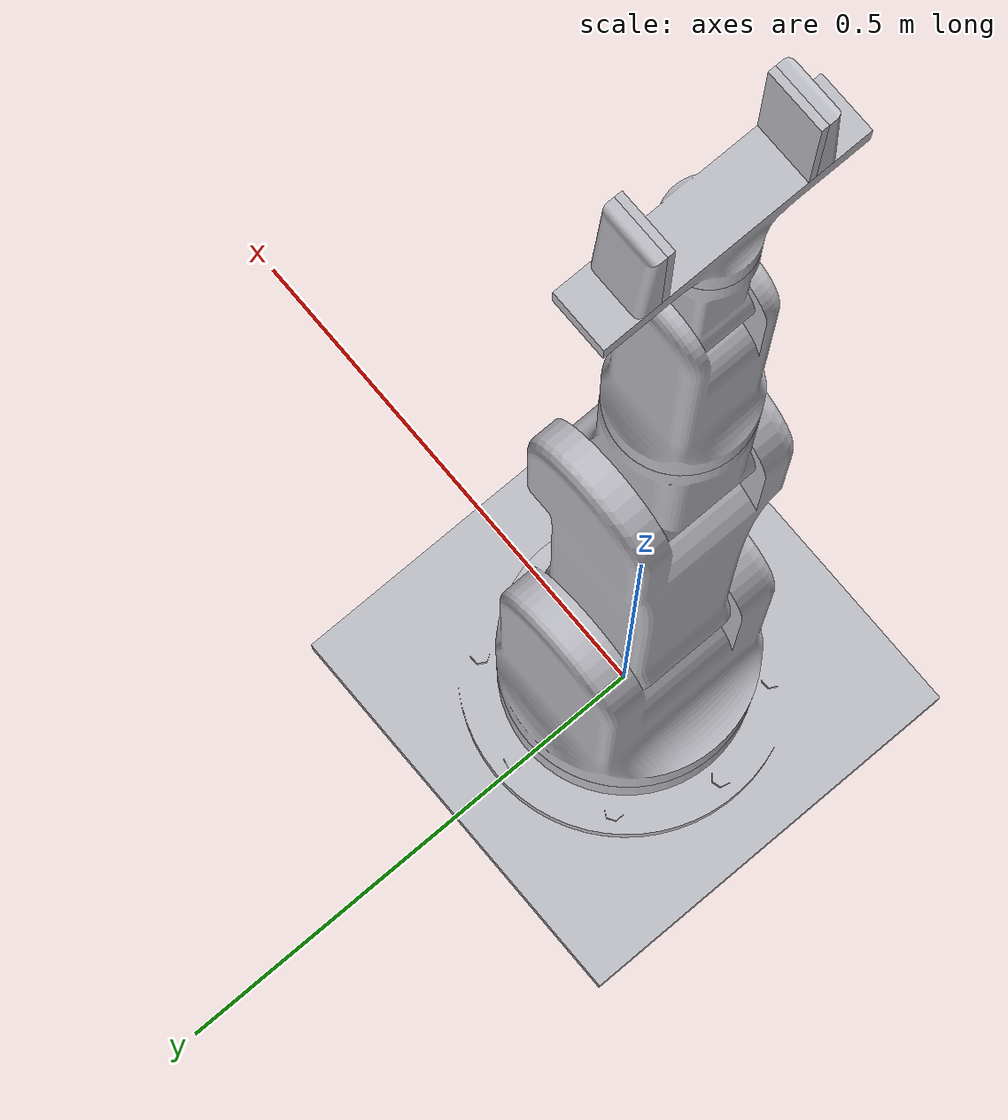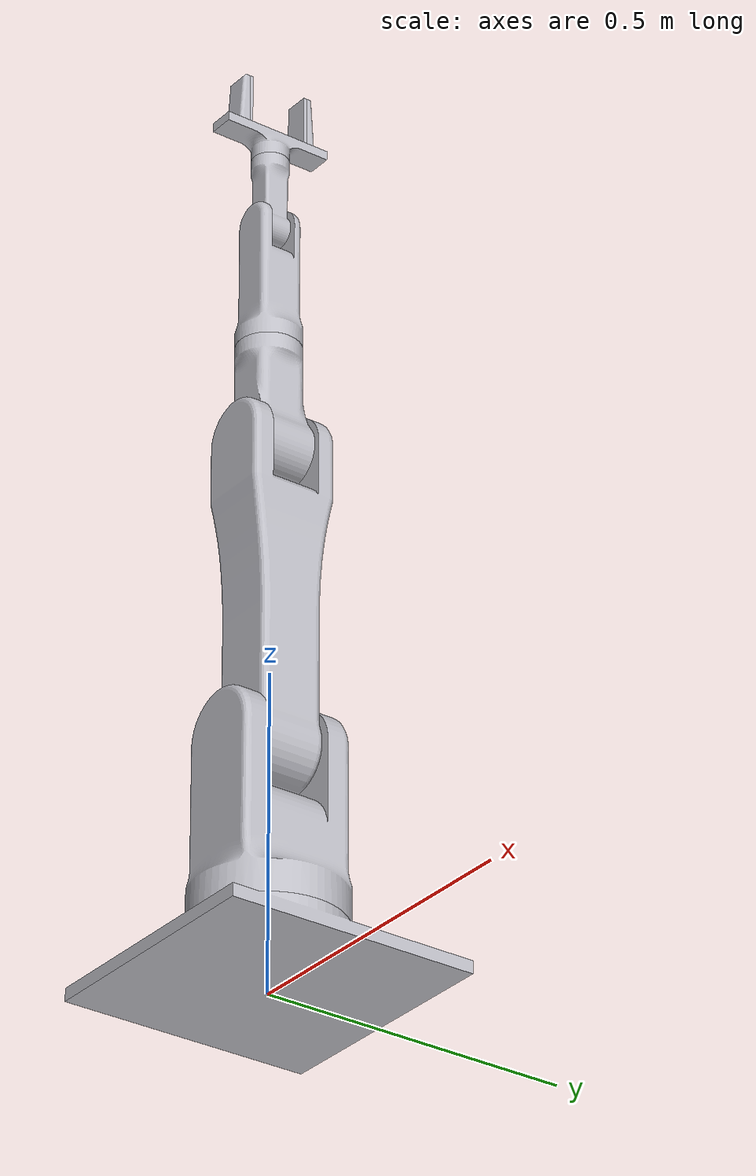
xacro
<?xml version="1.0" ?>
<robot name="robot_arm" xmlns:xacro="http://www.ros.org/wiki/xacro">

<xacro:include filename="$(find robot_arm_description)/urdf/materials.xacro" />
<xacro:include filename="$(find robot_arm_description)/urdf/robot_arm.trans" />
<xacro:include filename="$(find robot_arm_description)/urdf/robot_arm.gazebo" />

<link name="world"/>

<joint name="base_joint" type="fixed">
	<parent link="world"/>
	<child link="base_link"/>
	<origin rpy="0 0 0" xyz="0.0 0.0 0.0"/>
</joint>

<link name="base_link"></link>

<joint name="base_joint2" type="fixed">
	<parent link="base_link"/>
	<child link="base"/>
	<origin rpy="0 0 0" xyz="0.0 0.0 0.01"/>
</joint>

<link name="base">
  <inertial>
    <origin xyz="0.0 -4.3415807077914064e-17 0.03132405886399544" rpy="0 0 0"/>
    <mass value="18.09947747652384"/>
    <inertia ixx="0.167384" iyy="0.167384" izz="0.310998" ixy="0.0" iyz="0.0" ixz="0.0"/>
  </inertial>
  <visual>
    <origin xyz="0 0 0" rpy="0 0 0"/>
    <geometry>
      <mesh filename="package://robot_arm_description/meshes/base_link.stl" scale="0.001 0.001 0.001"/>
    </geometry>
    <material name="silver"/>
  </visual>
  <collision>
    <origin xyz="0 0 0" rpy="0 0 0"/>
    <geometry>
      <mesh filename="package://robot_arm_description/meshes/base_link.stl" scale="0.001 0.001 0.001"/>
    </geometry>
  </collision>
</link>

<link name="waist_1">
  <inertial>
    <origin xyz="-2.3750403473000028e-07 -8.066667906738984e-07 0.12364058852377574" rpy="0 0 0"/>
    <mass value="20.183529231928016"/>
    <inertia ixx="0.235705" iyy="0.209956" izz="0.110543" ixy="-0.0" iyz="-1e-06" ixz="-0.0"/>
  </inertial>
  <visual>
    <origin xyz="-0.0 -0.0 -0.09" rpy="0 0 0"/>
    <geometry>
      <mesh filename="package://robot_arm_description/meshes/waist_1.stl" scale="0.001 0.001 0.001"/>
    </geometry>
    <material name="silver"/>
  </visual>
  <collision>
    <origin xyz="-0.0 -0.0 -0.09" rpy="0 0 0"/>
    <geometry>
      <mesh filename="package://robot_arm_description/meshes/waist_1.stl" scale="0.001 0.001 0.001"/>
    </geometry>
  </collision>
</link>

<link name="upperarm_1">
  <inertial>
    <origin xyz="2.3659047487929498e-11 -0.04999996703866122 0.2327718880777211" rpy="0 0 0"/>
    <mass value="17.58857290587048"/>
    <inertia ixx="0.489324" iyy="0.485246" izz="0.040061" ixy="-0.0" iyz="-0.0" ixz="-0.0"/>
  </inertial>
  <visual>
    <origin xyz="-0.0 -0.05 -0.37" rpy="0 0 0"/>
    <geometry>
      <mesh filename="package://robot_arm_description/meshes/upperarm_1.stl" scale="0.001 0.001 0.001"/>
    </geometry>
    <material name="silver"/>
  </visual>
  <collision>
    <origin xyz="-0.0 -0.05 -0.37" rpy="0 0 0"/>
    <geometry>
      <mesh filename="package://robot_arm_description/meshes/upperarm_1.stl" scale="0.001 0.001 0.001"/>
    </geometry>
  </collision>
</link>

<link name="forearm1_1">
  <inertial>
    <origin xyz="-0.006296683962501097 0.04000001957050841 0.06477978077948165" rpy="0 0 0"/>
    <mass value="4.070671407078093"/>
    <inertia ixx="0.019208" iyy="0.019543" izz="0.004706" ixy="0.0" iyz="-0.0" ixz="0.001037"/>
  </inertial>
  <visual>
    <origin xyz="-0.0 0.04 -0.86" rpy="0 0 0"/>
    <geometry>
      <mesh filename="package://robot_arm_description/meshes/forearm1_1.stl" scale="0.001 0.001 0.001"/>
    </geometry>
    <material name="silver"/>
  </visual>
  <collision>
    <origin xyz="-0.0 0.04 -0.86" rpy="0 0 0"/>
    <geometry>
      <mesh filename="package://robot_arm_description/meshes/forearm1_1.stl" scale="0.001 0.001 0.001"/>
    </geometry>
  </collision>
</link>

<link name="forearm2_1">
  <inertial>
    <origin xyz="-2.7829952249300294e-07 1.033368932702031e-06 0.09268439753937763" rpy="0 0 0"/>
    <mass value="2.849952140554099"/>
    <inertia ixx="0.013062" iyy="0.012885" izz="0.002689" ixy="0.0" iyz="0.0" ixz="-0.0"/>
  </inertial>
  <visual>
    <origin xyz="0.01 -0.0 -1.035" rpy="0 0 0"/>
    <geometry>
      <mesh filename="package://robot_arm_description/meshes/forearm2_1.stl" scale="0.001 0.001 0.001"/>
    </geometry>
    <material name="silver"/>
  </visual>
  <collision>
    <origin xyz="0.01 -0.0 -1.035" rpy="0 0 0"/>
    <geometry>
      <mesh filename="package://robot_arm_description/meshes/forearm2_1.stl" scale="0.001 0.001 0.001"/>
    </geometry>
  </collision>
</link>

<link name="wrist1_1">
  <inertial>
    <origin xyz="2.0227437942908766e-06 0.020000329180512106 0.05299335806886707" rpy="0 0 0"/>
    <mass value="0.6993742533213136"/>
    <inertia ixx="0.001407" iyy="0.001413" izz="0.000215" ixy="0.0" iyz="-0.0" ixz="-0.0"/>
  </inertial>
  <visual>
    <origin xyz="0.01 0.02 -1.245" rpy="0 0 0"/>
    <geometry>
      <mesh filename="package://robot_arm_description/meshes/wrist1_1.stl" scale="0.001 0.001 0.001"/>
    </geometry>
    <material name="silver"/>
  </visual>
  <collision>
    <origin xyz="0.01 0.02 -1.245" rpy="0 0 0"/>
    <geometry>
      <mesh filename="package://robot_arm_description/meshes/wrist1_1.stl" scale="0.001 0.001 0.001"/>
    </geometry>
  </collision>
</link>

<link name="wrist2_1">
  <inertial>
    <origin xyz="1.1275702593849246e-16 3.657115606811286e-17 0.0281686051105714" rpy="0 0 0"/>
    <mass value="0.5036009164326142"/>
    <inertia ixx="0.000922" iyy="0.000161" izz="0.000918" ixy="0.0" iyz="-0.0" ixz="0.0"/>
  </inertial>
  <visual>
    <origin xyz="0.01 -0.0 -1.365" rpy="0 0 0"/>
    <geometry>
      <mesh filename="package://robot_arm_description/meshes/wrist2_1.stl" scale="0.001 0.001 0.001"/>
    </geometry>
    <material name="silver"/>
  </visual>
  <collision>
    <origin xyz="0.01 -0.0 -1.365" rpy="0 0 0"/>
    <geometry>
      <mesh filename="package://robot_arm_description/meshes/wrist2_1.stl" scale="0.001 0.001 0.001"/>
    </geometry>
  </collision>
</link>

<link name="grip_pad2_1">
  <inertial>
    <origin xyz="-6.938893903907228e-18 -0.0025000724777404274 0.0" rpy="0 0 0"/>
    <mass value="0.014880000388026237"/>
    <inertia ixx="8e-06" iyy="1e-05" izz="2e-06" ixy="-0.0" iyz="-0.0" ixz="-0.0"/>
  </inertial>
  <visual>
    <origin xyz="0.01 -0.005203 -1.45" rpy="0 0 0"/>
    <geometry>
      <mesh filename="package://robot_arm_description/meshes/grip_pad2_1.stl" scale="0.001 0.001 0.001"/>
    </geometry>
    <material name="silver"/>
  </visual>
  <collision>
    <origin xyz="0.01 -0.005203 -1.45" rpy="0 0 0"/>
    <geometry>
      <mesh filename="package://robot_arm_description/meshes/grip_pad2_1.stl" scale="0.001 0.001 0.001"/>
    </geometry>
  </collision>
</link>

<link name="grip_pad1_1">
  <inertial>
    <origin xyz="-1.0408340855860843e-17 0.0025000724777404274 0.0" rpy="0 0 0"/>
    <mass value="0.014880000388026237"/>
    <inertia ixx="8e-06" iyy="1e-05" izz="2e-06" ixy="0.0" iyz="0.0" ixz="0.0"/>
  </inertial>
  <visual>
    <origin xyz="0.01 0.005203 -1.45" rpy="0 0 0"/>
    <geometry>
      <mesh filename="package://robot_arm_description/meshes/grip_pad1_1.stl" scale="0.001 0.001 0.001"/>
    </geometry>
    <material name="silver"/>
  </visual>
  <collision>
    <origin xyz="0.01 0.005203 -1.45" rpy="0 0 0"/>
    <geometry>
      <mesh filename="package://robot_arm_description/meshes/grip_pad1_1.stl" scale="0.001 0.001 0.001"/>
    </geometry>
  </collision>
</link>

<link name="finger2_1">
  <inertial>
    <origin xyz="2.235174077075408e-10 0.011581779808013701 0.036854048228467606" rpy="0 0 0"/>
    <mass value="0.1078090820987537"/>
    <inertia ixx="5.8e-05" iyy="7e-05" izz="1.5e-05" ixy="-0.0" iyz="2e-06" ixz="0.0"/>
  </inertial>
  <visual>
    <origin xyz="0.01 -0.0 -1.41" rpy="0 0 0"/>
    <geometry>
      <mesh filename="package://robot_arm_description/meshes/finger2_1.stl" scale="0.001 0.001 0.001"/>
    </geometry>
    <material name="silver"/>
  </visual>
  <collision>
    <origin xyz="0.01 -0.0 -1.41" rpy="0 0 0"/>
    <geometry>
      <mesh filename="package://robot_arm_description/meshes/finger2_1.stl" scale="0.001 0.001 0.001"/>
    </geometry>
  </collision>
</link>

<link name="finger1_1">
  <inertial>
    <origin xyz="-5.582143254578842e-11 -0.011581779827821896 0.0368540482724069" rpy="0 0 0"/>
    <mass value="0.1078090836045169"/>
    <inertia ixx="5.8e-05" iyy="7e-05" izz="1.5e-05" ixy="-0.0" iyz="-2e-06" ixz="0.0"/>
  </inertial>
  <visual>
    <origin xyz="0.01 -0.0 -1.41" rpy="0 0 0"/>
    <geometry>
      <mesh filename="package://robot_arm_description/meshes/finger1_1.stl" scale="0.001 0.001 0.001"/>
    </geometry>
    <material name="silver"/>
  </visual>
  <collision>
    <origin xyz="0.01 -0.0 -1.41" rpy="0 0 0"/>
    <geometry>
      <mesh filename="package://robot_arm_description/meshes/finger1_1.stl" scale="0.001 0.001 0.001"/>
    </geometry>
  </collision>
</link>

<joint name="Revolute1" type="revolute">
  <origin xyz="0.0 0.0 0.09" rpy="0 0 0"/>
  <parent link="base"/>
  <child link="waist_1"/>
  <axis xyz="0.0 0.0 1.0"/>
  <limit upper="6.283185" lower="0.0" effort="100" velocity="100"/>
</joint>

<joint name="Revolute2" type="revolute">
  <origin xyz="0.0 0.05 0.28" rpy="0 0 0"/>
  <parent link="waist_1"/>
  <child link="upperarm_1"/>
  <axis xyz="0.0 -1.0 0.0"/>
  <limit upper="1.919862" lower="-1.919862" effort="100" velocity="100"/>
</joint>

<joint name="Revolute3" type="revolute">
  <origin xyz="0.0 -0.09 0.49" rpy="0 0 0"/>
  <parent link="upperarm_1"/>
  <child link="forearm1_1"/>
  <axis xyz="-0.0 1.0 0.0"/>
  <limit upper="2.094395" lower="-0.349066" effort="100" velocity="100"/>
</joint>

<joint name="Revolute4" type="revolute">
  <origin xyz="-0.01 0.04 0.175" rpy="0 0 0"/>
  <parent link="forearm1_1"/>
  <child link="forearm2_1"/>
  <axis xyz="0.0 0.0 1.0"/>
  <limit upper="6.283185" lower="0.0" effort="100" velocity="100"/>
</joint>

<joint name="Revolute5" type="revolute">
  <origin xyz="0.0 -0.02 0.21" rpy="0 0 0"/>
  <parent link="forearm2_1"/>
  <child link="wrist1_1"/>
  <axis xyz="0.0 1.0 0.0"/>
  <limit upper="2.181662" lower="-0.785398" effort="100" velocity="100"/>
</joint>

<joint name="Revolute6" type="revolute">
  <origin xyz="0.0 0.02 0.12" rpy="0 0 0"/>
  <parent link="wrist1_1"/>
  <child link="wrist2_1"/>
  <axis xyz="0.0 0.0 1.0"/>
  <limit upper="6.283185" lower="0.0" effort="100" velocity="100"/>
</joint>

<joint name="Rigid7" type="fixed">
  <origin xyz="0.0 0.005203 0.04" rpy="0 0 0"/>
  <parent link="finger2_1"/>
  <child link="grip_pad2_1"/>
</joint>

<joint name="Rigid8" type="fixed">
  <origin xyz="0.0 -0.005203 0.04" rpy="0 0 0"/>
  <parent link="finger1_1"/>
  <child link="grip_pad1_1"/>
</joint>

<joint name="Slider9" type="prismatic">
  <origin xyz="0.0 0.0 0.045" rpy="0 0 0"/>
  <parent link="wrist2_1"/>
  <child link="finger2_1"/>
  <axis xyz="0.0 1.0 0.0"/>
  <limit upper="0.08" lower="0.013" effort="100" velocity="100"/>
</joint>

<joint name="Slider10" type="prismatic">
  <origin xyz="0.0 0.0 0.045" rpy="0 0 0"/>
  <parent link="wrist2_1"/>
  <child link="finger1_1"/>
  <axis xyz="0.0 1.0 0.0"/>
  <limit upper="-0.013" lower="-0.08" effort="100" velocity="100"/>
  <mimic joint="Slider9" multiplier="-1" offset="0" />
</joint>

</robot>

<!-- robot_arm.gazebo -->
<robot name="robot_arm" xmlns:xacro="http://www.ros.org/wiki/xacro" >

<xacro:property name="body_color" value="Gazebo/Grey" />

<gazebo>
  <plugin name="control" filename="libgazebo_ros_control.so">
    <robotNamespace>/</robotNamespace>
  </plugin>
</gazebo>

<gazebo reference="base_link">
  <material>${body_color}</material>
  <mu1>0.2</mu1>
  <mu2>0.2</mu2>
  <selfCollide>true</selfCollide>
  <gravity>true</gravity>
</gazebo>

<gazebo reference="waist_1">
  <material>${body_color}</material>
  <mu1>0.2</mu1>
  <mu2>0.2</mu2>
  <selfCollide>true</selfCollide>
</gazebo>

<gazebo reference="upperarm_1">
  <material>${body_color}</material>
  <mu1>0.2</mu1>
  <mu2>0.2</mu2>
  <selfCollide>true</selfCollide>
</gazebo>

<gazebo reference="forearm1_1">
  <material>${body_color}</material>
  <mu1>0.2</mu1>
  <mu2>0.2</mu2>
  <selfCollide>true</selfCollide>
</gazebo>

<gazebo reference="forearm2_1">
  <material>${body_color}</material>
  <mu1>0.2</mu1>
  <mu2>0.2</mu2>
  <selfCollide>true</selfCollide>
</gazebo>

<gazebo reference="wrist1_1">
  <material>${body_color}</material>
  <mu1>0.2</mu1>
  <mu2>0.2</mu2>
  <selfCollide>true</selfCollide>
</gazebo>

<gazebo reference="wrist2_1">
  <material>${body_color}</material>
  <mu1>0.2</mu1>
  <mu2>0.2</mu2>
  <selfCollide>true</selfCollide>
</gazebo>

<gazebo reference="grip_pad2_1">
  <material>${body_color}</material>
  <mu1>0.2</mu1>
  <mu2>0.2</mu2>
  <selfCollide>true</selfCollide>
</gazebo>

<gazebo reference="grip_pad1_1">
  <material>${body_color}</material>
  <mu1>0.2</mu1>
  <mu2>0.2</mu2>
  <selfCollide>true</selfCollide>
</gazebo>

<gazebo reference="finger2_1">
  <material>${body_color}</material>
  <mu1>0.2</mu1>
  <mu2>0.2</mu2>
  <selfCollide>true</selfCollide>
</gazebo>

<gazebo reference="finger1_1">
  <material>${body_color}</material>
  <mu1>0.2</mu1>
  <mu2>0.2</mu2>
  <selfCollide>true</selfCollide>
</gazebo>

<gazebo reference="Revolute1">
    <disableFixedJointLumping>true</disableFixedJointLumping>
    <sensor name="waist_1_ft_sensor" type="force_torque">
      <force_torque>
        <frame>child</frame>
        <measure_direction>child_to_parent</measure_direction>
      </force_torque>
    </sensor>
  </gazebo>
  <gazebo>
      <plugin name="ft_sensor" filename="libgazebo_ros_ft_sensor.so">
          <updateRate>100.0</updateRate>
          <topicName>Revolute1_ft</topicName>
          <jointName>Revolute1</jointName>
      </plugin>
  </gazebo>

  <gazebo reference="Revolute2">
    <disableFixedJointLumping>true</disableFixedJointLumping>
    <sensor name="upperarm_1_ft_sensor" type="force_torque">
      <force_torque>
        <frame>child</frame>
        <measure_direction>child_to_parent</measure_direction>
      </force_torque>
    </sensor>
  </gazebo>
  <gazebo>
      <plugin name="ft_sensor" filename="libgazebo_ros_ft_sensor.so">
          <updateRate>100.0</updateRate>
          <topicName>Revolute2_ft</topicName>
          <jointName>Revolute2</jointName>
      </plugin>
  </gazebo>

  <gazebo reference="Revolute3">
    <disableFixedJointLumping>true</disableFixedJointLumping>
    <sensor name="forearm1_1_ft_sensor" type="force_torque">
      <force_torque>
        <frame>child</frame>
        <measure_direction>child_to_parent</measure_direction>
      </force_torque>
    </sensor>
  </gazebo>
  <gazebo>
      <plugin name="ft_sensor" filename="libgazebo_ros_ft_sensor.so">
          <updateRate>100.0</updateRate>
          <topicName>Revolute3_ft</topicName>
          <jointName>Revolute3</jointName>
      </plugin>
  </gazebo>

    <gazebo reference="Revolute4">
    <disableFixedJointLumping>true</disableFixedJointLumping>
    <sensor name="forearm2_1_ft_sensor" type="force_torque">
      <force_torque>
        <frame>child</frame>
        <measure_direction>child_to_parent</measure_direction>
      </force_torque>
    </sensor>
  </gazebo>
  <gazebo>
      <plugin name="ft_sensor" filename="libgazebo_ros_ft_sensor.so">
          <updateRate>100.0</updateRate>
          <topicName>Revolute4_ft</topicName>
          <jointName>Revolute4</jointName>
      </plugin>
  </gazebo>

  <gazebo reference="Revolute5">
    <disableFixedJointLumping>true</disableFixedJointLumping>
    <sensor name="wrist1_1_ft_sensor" type="force_torque">
      <force_torque>
        <frame>child</frame>
        <measure_direction>child_to_parent</measure_direction>
      </force_torque>
    </sensor>
  </gazebo>
  <gazebo>
      <plugin name="ft_sensor" filename="libgazebo_ros_ft_sensor.so">
          <updateRate>100.0</updateRate>
          <topicName>Revolute5_ft</topicName>
          <jointName>Revolute5</jointName>
      </plugin>
  </gazebo>

<gazebo reference="Revolute6">
    <disableFixedJointLumping>true</disableFixedJointLumping>
    <sensor name="wrist2_1_ft_sensor" type="force_torque">
      <force_torque>
        <frame>child</frame>
        <measure_direction>child_to_parent</measure_direction>
      </force_torque>
    </sensor>
  </gazebo>
  <gazebo>
      <plugin name="ft_sensor" filename="libgazebo_ros_ft_sensor.so">
          <updateRate>100.0</updateRate>
          <topicName>Revolute6_ft</topicName>
          <jointName>Revolute6</jointName>
      </plugin>
  </gazebo>

</robot>
